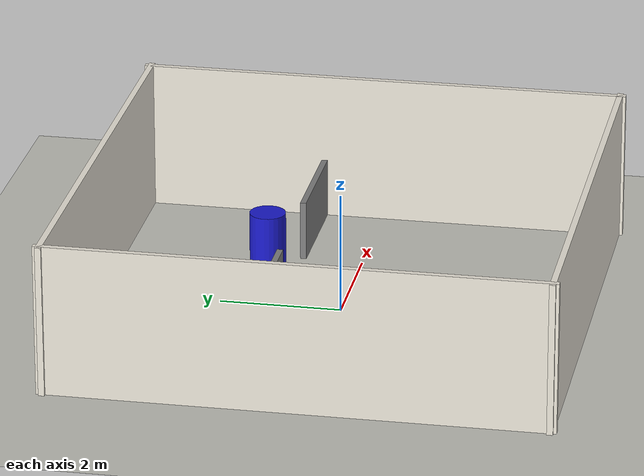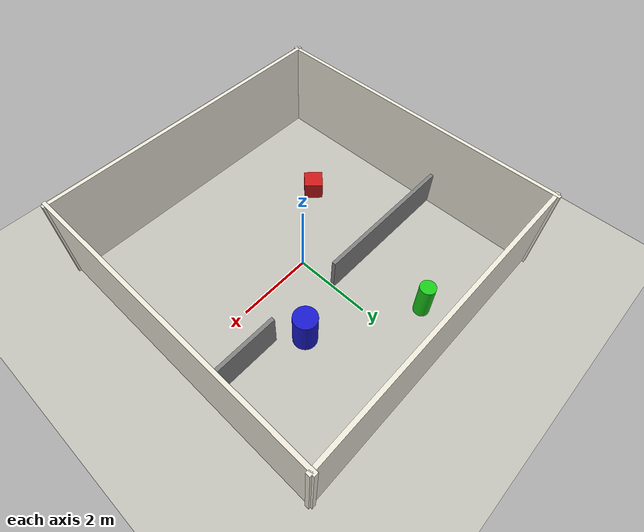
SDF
<?xml version="1.0" ?>
<sdf version="1.8">
  <world name="room_world">
    <physics name="1ms" type="ignored">
      <max_step_size>0.001</max_step_size>
      <real_time_factor>1.0</real_time_factor>
    </physics>

    <plugin filename="gz-sim-physics-system" name="gz::sim::systems::Physics"/>
    <plugin filename="gz-sim-user-commands-system" name="gz::sim::systems::UserCommands"/>
    <plugin filename="gz-sim-scene-broadcaster-system" name="gz::sim::systems::SceneBroadcaster"/>
    <plugin filename="gz-sim-sensors-system" name="gz::sim::systems::Sensors">
      <render_engine>ogre2</render_engine>
    </plugin>

    <light type="directional" name="sun">
      <cast_shadows>true</cast_shadows>
      <pose>0 0 10 0 0 0</pose>
      <diffuse>0.8 0.8 0.8 1</diffuse>
      <specular>0.2 0.2 0.2 1</specular>
      <direction>-0.5 0.1 -0.9</direction>
    </light>

    <model name="ground_plane">
      <static>true</static>
      <link name="link">
        <collision name="collision">
          <geometry><plane><normal>0 0 1</normal></plane></geometry>
          <surface><friction><ode><mu>1.0</mu><mu2>1.0</mu2></ode></friction></surface>
        </collision>
        <visual name="visual">
          <geometry><plane><normal>0 0 1</normal><size>8 8</size></plane></geometry>
          <material>
            <ambient>0.75 0.75 0.72 1</ambient>
            <diffuse>0.75 0.75 0.72 1</diffuse>
            <specular>0.2 0.2 0.2 1</specular>
          </material>
        </visual>
      </link>
    </model>

    <model name="room">
      <static>true</static>
      <link name="wall_back">
        <pose>0 4 1.25 0 0 0</pose>
        <visual name="visual">
          <geometry><box><size>8.2 0.1 2.5</size></box></geometry>
          <material>
            <ambient>0.92 0.90 0.85 1</ambient>
            <diffuse>0.92 0.90 0.85 1</diffuse>
            <specular>0.1 0.1 0.1 1</specular>
          </material>
        </visual>
        <collision name="collision">
          <geometry><box><size>8.2 0.1 2.5</size></box></geometry>
        </collision>
      </link>
      <link name="wall_front">
        <pose>0 -4 1.25 0 0 0</pose>
        <visual name="visual">
          <geometry><box><size>8.2 0.1 2.5</size></box></geometry>
          <material>
            <ambient>0.92 0.90 0.85 1</ambient>
            <diffuse>0.92 0.90 0.85 1</diffuse>
            <specular>0.1 0.1 0.1 1</specular>
          </material>
        </visual>
        <collision name="collision">
          <geometry><box><size>8.2 0.1 2.5</size></box></geometry>
        </collision>
      </link>
      <link name="wall_left">
        <pose>-4 0 1.25 0 0 0</pose>
        <visual name="visual">
          <geometry><box><size>0.1 8.2 2.5</size></box></geometry>
          <material>
            <ambient>0.92 0.90 0.85 1</ambient>
            <diffuse>0.92 0.90 0.85 1</diffuse>
            <specular>0.1 0.1 0.1 1</specular>
          </material>
        </visual>
        <collision name="collision">
          <geometry><box><size>0.1 8.2 2.5</size></box></geometry>
        </collision>
      </link>
      <link name="wall_right">
        <pose>4 0 1.25 0 0 0</pose>
        <visual name="visual">
          <geometry><box><size>0.1 8.2 2.5</size></box></geometry>
          <material>
            <ambient>0.92 0.90 0.85 1</ambient>
            <diffuse>0.92 0.90 0.85 1</diffuse>
            <specular>0.1 0.1 0.1 1</specular>
          </material>
        </visual>
        <collision name="collision">
          <geometry><box><size>0.1 8.2 2.5</size></box></geometry>
        </collision>
      </link>
    </model>
    <model name="pillar_1">
      <static>true</static>
      <pose>1.5 1.5 0.5 0 0 0</pose>
      <link name="link">
        <collision name="collision">
          <geometry><cylinder><radius>0.3</radius><length>1.0</length></cylinder></geometry>
        </collision>
        <visual name="visual">
          <geometry><cylinder><radius>0.3</radius><length>1.0</length></cylinder></geometry>
          <material>
            <ambient>0.1 0.1 0.8 1</ambient>
            <diffuse>0.1 0.1 0.8 1</diffuse>
          </material>
        </visual>
      </link>
    </model>

    <model name="box_1">
      <static>true</static>
      <pose>-2 -1.5 0.25 0 0 0.78</pose> <link name="link">
        <collision name="collision">
          <geometry><box><size>0.5 0.5 0.5</size></box></geometry>
        </collision>
        <visual name="visual">
          <geometry><box><size>0.5 0.5 0.5</size></box></geometry>
          <material>
            <ambient>0.8 0.1 0.1 1</ambient>
            <diffuse>0.8 0.1 0.1 1</diffuse>
          </material>
        </visual>
      </link>
    </model>

    <model name="internal_wall">
      <static>true</static>
      <pose>0 0 0.5 0 0 0</pose>
      <link name="segment_1">
        <pose>-2 1 0 0 0 0</pose>
        <collision name="collision">
          <geometry><box><size>4 0.1 1</size></box></geometry>
        </collision>
        <visual name="visual">
          <geometry><box><size>4 0.1 1</size></box></geometry>
          <material>
            <ambient>0.5 0.5 0.5 1</ambient>
            <diffuse>0.5 0.5 0.5 1</diffuse>
          </material>
        </visual>
      </link>
      <link name="segment_2">
        <pose>3 1 0 0 0 0</pose>
        <collision name="collision">
          <geometry><box><size>2 0.1 1</size></box></geometry>
        </collision>
        <visual name="visual">
          <geometry><box><size>2 0.1 1</size></box></geometry>
          <material>
            <ambient>0.5 0.5 0.5 1</ambient>
            <diffuse>0.5 0.5 0.5 1</diffuse>
          </material>
        </visual>
      </link>
    </model>

    <model name="pillar_2">
      <static>true</static>
      <pose>-1 3 0.5 0 0 0</pose>
      <link name="link">
        <collision name="collision">
          <geometry><cylinder><radius>0.2</radius><length>1.0</length></cylinder></geometry>
        </collision>
        <visual name="visual">
          <geometry><cylinder><radius>0.2</radius><length>1.0</length></cylinder></geometry>
          <material>
            <ambient>0.1 0.8 0.1 1</ambient>
            <diffuse>0.1 0.8 0.1 1</diffuse>
          </material>
        </visual>
      </link>
    </model>
  </world>
</sdf>
